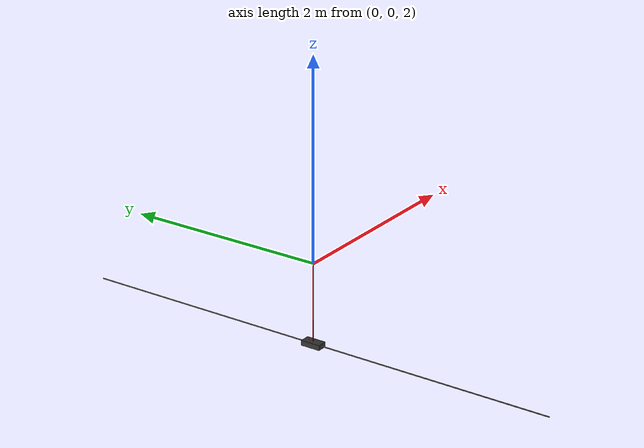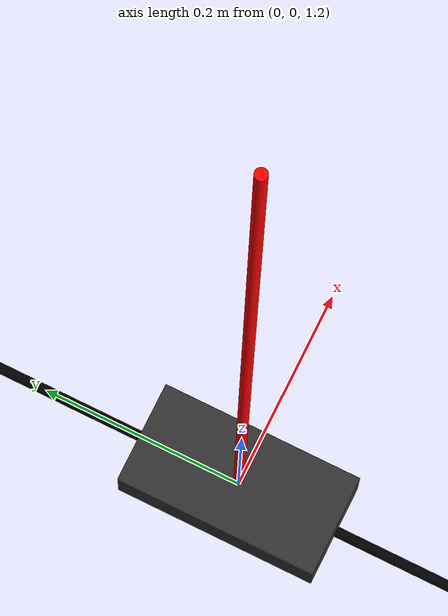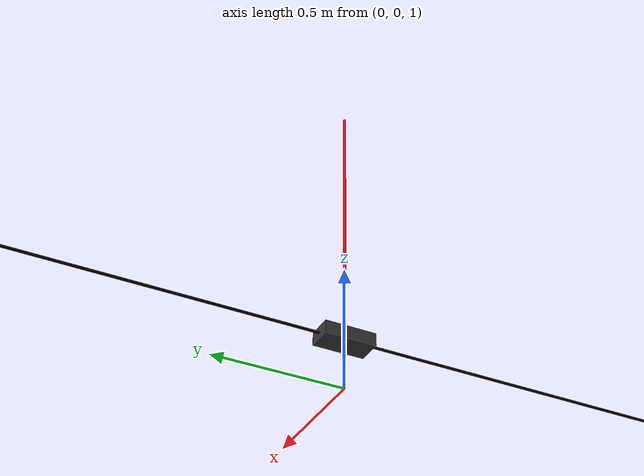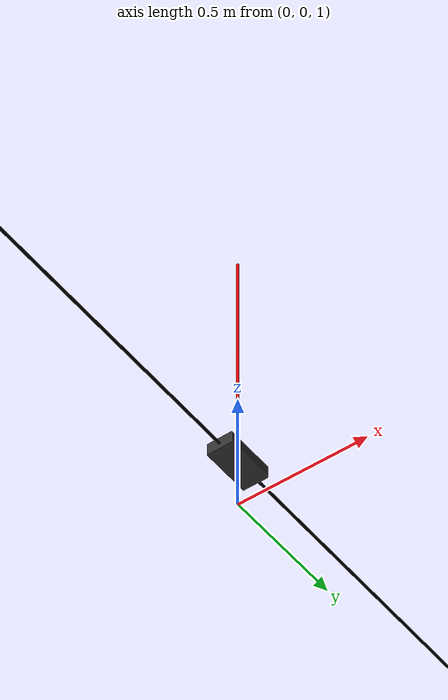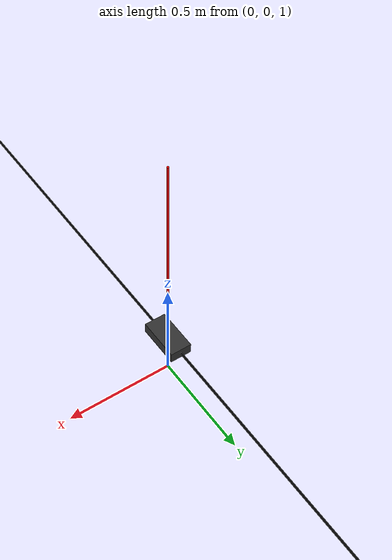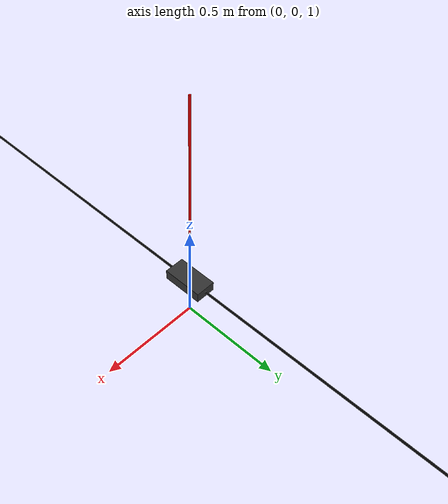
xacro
<?xml version='1.0' encoding='UTF-8'?>

<robot name="cartpole_xacro" xmlns:xacro="http://www.ros.org/wiki/xacro">

    <!-- CartPole properties match the OpenAI Gym CartPole-v1 environment -->
    <!-- https://github.com/openai/gym/blob/master/gym/envs/classic_control/cartpole.py -->

    <xacro:property name="rail_height" value="1.2"/>
    <xacro:property name="rail_length" value="5"/>
    <xacro:property name="rail_radius" value="0.005"/>
    <xacro:property name="rail_mass" value="5"/>

    <xacro:property name="cart_size_x" value="0.1"/>
    <xacro:property name="cart_size_y" value="0.2"/>
    <xacro:property name="cart_size_z" value="0.05"/>
    <xacro:property name="cart_mass" value="1.0"/>

    <xacro:property name="pole_length" value="1.0"/>
    <xacro:property name="pole_radius" value="0.005"/>
    <xacro:property name="pole_mass" value="0.1"/>
    <xacro:property name="theta_0" value="0.0"/>

    <xacro:property name="epsilon" value="1e-09"/>

    <xacro:property name="rgba_black" value="0 0 0 1"/>
    <xacro:property name="rgba_white" value="1 1 1 1"/>
    <xacro:property name="rgba_grey" value="0.2 0.2 0.2 1"/>
    <xacro:property name="rgba_red" value="1 0 0 1"/>

    <xacro:macro name="box_inertia" params="mass dimx dimy dimz xyz rpy">
        <inertial>
            <origin xyz="${xyz}" rpy="${rpy}"/>
            <mass value="${mass}"/>
            <xacro:property name="ixx" value="${1/12*mass*(dimy*dimy+dimz*dimz)}"/>
            <xacro:property name="iyy" value="${1/12*mass*(dimx*dimx+dimz*dimz)}"/>
            <xacro:property name="izz" value="${1/12*mass*(dimx*dimx+dimy*dimy)}"/>
            <inertia ixx="${ixx}" ixy="0" ixz="0" iyy="${iyy}" iyz="0" izz="${izz}"/>
        </inertial>
    </xacro:macro>

    <xacro:macro name="cylinder_inertial_element"
                 params="mass length radius xyz rpy">
        <inertial>
            <origin xyz="${xyz}" rpy="${rpy}"/>
            <mass value="${mass}"/>
            <xacro:property name="ixx"
                            value="${1/12*mass*(3*radius*radius+length*length)}"/>
            <xacro:property name="iyy"
                            value="${1/12*mass*(3*radius*radius+length*length)}"/>
            <xacro:property name="izz" value="${0.5*mass*radius*radius}"/>
            <inertia ixx="${ixx}" ixy="0" ixz="0" iyy="${iyy}" iyz="0" izz="${izz}"/>
        </inertial>
    </xacro:macro>

    <xacro:macro name="mymaterial" params="name rgba">
        <material name="${name}">
            <color rgba="${rgba}"/>
        </material>
    </xacro:macro>

    <xacro:macro name="gzmaterial" params="reference rgba">
        <gazebo reference="${reference}">
            <visual>
                <material>
                    <diffuse>${rgba}</diffuse>
                </material>
            </visual>
        </gazebo>
    </xacro:macro>

    <!-- COLORS -->

    <material name="black">
        <color rgba="${rgba_black}"/>
    </material>
    <material name="white">
        <color rgba="${rgba_white}"/>
    </material>
    <material name="grey">
        <color rgba="${rgba_grey}"/>
    </material>

    <xacro:gzmaterial reference="rail" rgba="${rgba_black}"/>
    <xacro:gzmaterial reference="cart" rgba="${rgba_grey}"/>
    <xacro:gzmaterial reference="pole" rgba="${rgba_red}"/>

    <!-- LINKS -->

    <link name="world"/>

    <link name="rail">
        <xacro:cylinder_inertial_element mass="${rail_mass}"
                                         length="${rail_length}"
                                         radius="${rail_radius}"
                                         xyz="0 0 0"
                                         rpy="${pi/2} 0 0"/>
        <visual>
            <geometry>
                <cylinder length="${rail_length}" radius="${rail_radius}"/>
            </geometry>
            <origin xyz="0 0 0" rpy="${pi/2} 0 0"/>
            <xacro:mymaterial name="black" rgba="${rgba_black}"/>
        </visual>
    </link>

    <link name="cart">
        <xacro:box_inertia mass="${cart_mass}"
                           dimx="${cart_size_x}"
                           dimy="${cart_size_y}"
                           dimz="${cart_size_z}"
                           xyz="0 0 0"
                           rpy="0 0 0"/>
        <visual>
            <geometry>
                <box size="${cart_size_x} ${cart_size_y} ${cart_size_z}"/>
            </geometry>
            <origin xyz="0 0 0" rpy="0 0 0"/>
            <xacro:mymaterial name="grey" rgba="${rgba_grey}"/>
        </visual>
        <collision>
            <geometry>
                <box size="${cart_size_x} ${cart_size_y} ${cart_size_z}"/>
            </geometry>
            <origin xyz="0 0 0" rpy="0 0 0"/>
        </collision>
    </link>

    <link name="pole">
        <xacro:cylinder_inertial_element mass="${pole_mass}"
                                         length="${pole_length}"
                                         radius="${pole_radius}"
                                         xyz="0 0 ${pole_length/2}"
                                         rpy="0 0 0"/>
        <visual>
            <geometry>
                <cylinder length="${pole_length}" radius="${pole_radius}"/>
            </geometry>
            <origin xyz="0 0 ${pole_length/2}" rpy="0 0 0"/>
            <xacro:mymaterial name="red" rgba="${rgba_red}"/>
        </visual>
        <collision>
            <geometry>
                <cylinder length="${pole_length}" radius="${pole_radius}"/>
            </geometry>
            <origin xyz="0 0 ${pole_length/2}" rpy="0 0 0"/>
            <xacro:mymaterial name="red" rgba="${rgba_red}"/>
        </collision>
    </link>

    <!-- JOINTS -->

    <!-- http://gazebosim.org/tutorials/?tut=ros_urdf#RigidlyFixingAModeltotheWorld -->
    <joint name="world_to_rail" type="fixed">
        <parent link="world"/>
        <child link="rail"/>
        <origin xyz="0 0 ${rail_height}" rpy="0 0 0"/>
    </joint>

    <joint name="linear" type="prismatic">
        <parent link="rail"/>
        <child link="cart"/>
        <axis xyz="0 1 0"/>
        <origin xyz="0 0 0" rpy="0 0 0"/>
        <limit lower="-${rail_length/2-cart_size_y/2}"
               upper="${rail_length/2-cart_size_y/2}" effort="500" velocity="10"/>
    </joint>

    <joint name="pivot" type="continuous">
        <parent link="cart"/>
        <child link="pole"/>
        <axis xyz="1 0 0"/>
        <origin xyz="0 0 ${cart_size_z/2}" rpy="${theta_0} 0 0"/>
        <limit lower="-${2*pi}" upper="${2*pi}" effort="500" velocity="10"/>
    </joint>

</robot>
